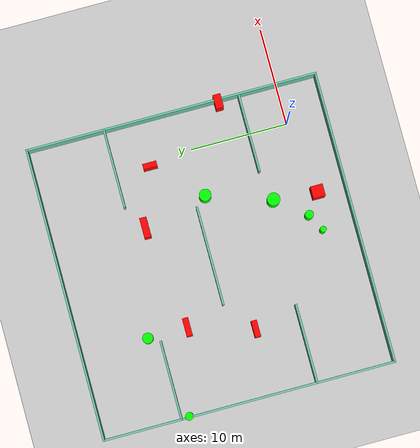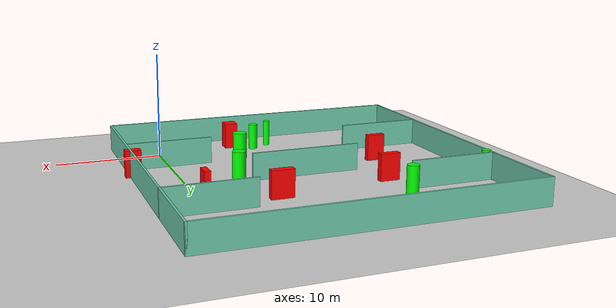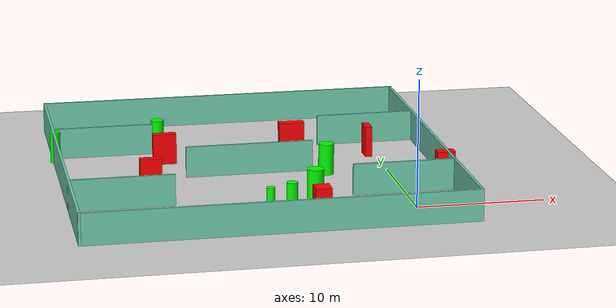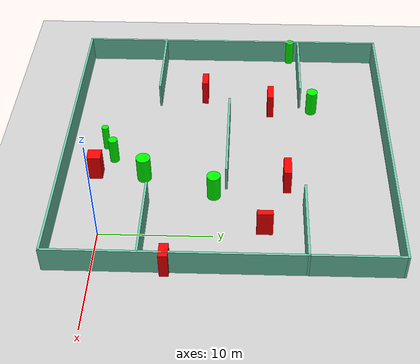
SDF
<sdf version="1.7">
 <world name="default">
  <light name="sun" type="directional">
   <pose>0 0 10 0 -0 0</pose>
   <diffuse>0.8 0.8 0.8 1</diffuse>
   <specular>0.2 0.2 0.2 1</specular>
   <attenuation>
    <range>1000</range>
    <constant>0.9</constant>
    <linear>0.01</linear>
    <quadratic>0.001</quadratic>
   </attenuation>
   <direction>-0.5 0.1 -0.9</direction>
   <spot><inner_angle>0</inner_angle><outer_angle>0</outer_angle><falloff>0</falloff></spot>
  </light>
  <model name="ground_plane">
   <static>1</static>
   <link name="link">
    <collision name="collision">
     <geometry><plane><normal>0 0 1</normal><size>100 100</size></plane></geometry>
     <surface>
      <contact><collide_bitmask>65535</collide_bitmask></contact>
      <friction><ode><mu>100</mu><mu2>50</mu2></ode></friction>
     </surface>
    </collision>
    <visual name="visual">
     <cast_shadows>0</cast_shadows>
     <geometry><plane><normal>0 0 1</normal><size>100 100</size></plane></geometry>
     <material>
      <script><uri>file://media/materials/scripts/gazebo.material</uri><name>Gazebo/Grey</name></script>
     </material>
    </visual>
   </link>
  </model>
  <gravity>0 0 -9.8</gravity>
  <magnetic_field>6e-06 2.3e-05 -4.2e-05</magnetic_field>
  <atmosphere type="adiabatic"/>
  <physics type="ode">
   <max_step_size>0.001</max_step_size>
   <real_time_factor>1</real_time_factor>
   <real_time_update_rate>1000</real_time_update_rate>
  </physics>
  <scene><ambient>0.4 0.4 0.4 1</ambient><background>0.7 0.7 0.7 1</background><shadows>1</shadows></scene>
  <spherical_coordinates>
   <surface_model>EARTH_WGS84</surface_model>
   <latitude_deg>0</latitude_deg>
   <longitude_deg>0</longitude_deg>
   <elevation>0</elevation>
   <heading_deg>0</heading_deg>
  </spherical_coordinates>
  <model name="my_base_walls">
   <link name="Wall_10">
    <collision name="Wall_10_Collision">
     <geometry><box><size>8.2 0.2 2.5</size></box></geometry>
     <pose>0 0 1.25 0 -0 0</pose>
    </collision>
    <visual name="Wall_10_Visual">
     <pose>0 0 1.25 0 -0 0</pose>
     <geometry><box><size>8.2 0.2 2.5</size></box></geometry>
     <material>
      <script><uri>file://media/materials/scripts/gazebo.material</uri><name>Gazebo/Grey</name></script>
      <ambient>0.435294 0.796078 0.67451 1</ambient>
     </material>
     <meta><layer>0</layer></meta>
    </visual>
    <pose>-11 -7 0 0 -0 0</pose>
   </link>
   <link name="Wall_12">
    <collision name="Wall_12_Collision">
     <geometry><box><size>8.2 0.2 2.5</size></box></geometry>
     <pose>0 0 1.25 0 -0 0</pose>
    </collision>
    <visual name="Wall_12_Visual">
     <pose>0 0 1.25 0 -0 0</pose>
     <geometry><box><size>8.2 0.2 2.5</size></box></geometry>
     <material>
      <script><uri>file://media/materials/scripts/gazebo.material</uri><name>Gazebo/Grey</name></script>
      <ambient>0.435294 0.796078 0.67451 1</ambient>
     </material>
     <meta><layer>0</layer></meta>
    </visual>
    <pose>-11 7 0 0 -0 0</pose>
   </link>
   <link name="Wall_14">
    <collision name="Wall_14_Collision">
     <geometry><box><size>8.2 0.2 2.5</size></box></geometry>
     <pose>0 0 1.25 0 -0 0</pose>
    </collision>
    <visual name="Wall_14_Visual">
     <pose>0 0 1.25 0 -0 0</pose>
     <geometry><box><size>8.2 0.2 2.5</size></box></geometry>
     <material>
      <script><uri>file://media/materials/scripts/gazebo.material</uri><name>Gazebo/Grey</name></script>
      <ambient>0.435294 0.796078 0.67451 1</ambient>
     </material>
     <meta><layer>0</layer></meta>
    </visual>
    <pose>11 7 0 0 -0 3.14159</pose>
   </link>
   <link name="Wall_16">
    <collision name="Wall_16_Collision">
     <geometry><box><size>10.2 0.2 2.5</size></box></geometry>
     <pose>0 0 1.25 0 -0 0</pose>
    </collision>
    <visual name="Wall_16_Visual">
     <pose>0 0 1.25 0 -0 0</pose>
     <geometry><box><size>10.2 0.2 2.5</size></box></geometry>
     <material>
      <script><uri>file://media/materials/scripts/gazebo.material</uri><name>Gazebo/Grey</name></script>
      <ambient>0.435294 0.796078 0.67451 1</ambient>
     </material>
     <meta><layer>0</layer></meta>
    </visual>
    <pose>0 0 0 0 -0 3.14159</pose>
   </link>
   <link name="Wall_2">
    <collision name="Wall_2_Collision">
     <geometry><box><size>30.2 0.2 2.5</size></box></geometry>
     <pose>0 0 1.25 0 -0 0</pose>
    </collision>
    <visual name="Wall_2_Visual">
     <pose>0 0 1.25 0 -0 0</pose>
     <geometry><box><size>30.2 0.2 2.5</size></box></geometry>
     <material>
      <script><uri>file://media/materials/scripts/gazebo.material</uri><name>Gazebo/Grey</name></script>
      <ambient>0.435294 0.796078 0.67451 1</ambient>
     </material>
     <meta><layer>0</layer></meta>
    </visual>
    <pose>0 -15 0 0 -0 3.14159</pose>
   </link>
   <link name="Wall_3">
    <collision name="Wall_3_Collision">
     <geometry><box><size>30.2 0.2 2.5</size></box></geometry>
     <pose>0 0 1.25 0 -0 0</pose>
    </collision>
    <visual name="Wall_3_Visual">
     <pose>0 0 1.25 0 -0 0</pose>
     <geometry><box><size>30.2 0.2 2.5</size></box></geometry>
     <material>
      <script><uri>file://media/materials/scripts/gazebo.material</uri><name>Gazebo/Grey</name></script>
      <ambient>0.435294 0.796078 0.67451 1</ambient>
     </material>
     <meta><layer>0</layer></meta>
    </visual>
    <pose>-15 0 0 0 -0 1.5708</pose>
   </link>
   <link name="Wall_4">
    <collision name="Wall_4_Collision">
     <geometry><box><size>30.2 0.2 2.5</size></box></geometry>
     <pose>0 0 1.25 0 -0 0</pose>
    </collision>
    <visual name="Wall_4_Visual">
     <pose>0 0 1.25 0 -0 0</pose>
     <geometry><box><size>30.2 0.2 2.5</size></box></geometry>
     <material>
      <script><uri>file://media/materials/scripts/gazebo.material</uri><name>Gazebo/Grey</name></script>
      <ambient>0.435294 0.796078 0.67451 1</ambient>
     </material>
     <meta><layer>0</layer></meta>
    </visual>
    <pose>0 15 0 0 -0 0</pose>
   </link>
   <link name="Wall_6">
    <collision name="Wall_6_Collision">
     <geometry><box><size>30.2 0.2 2.5</size></box></geometry>
     <pose>0 0 1.25 0 -0 0</pose>
    </collision>
    <visual name="Wall_6_Visual">
     <pose>0 0 1.25 0 -0 0</pose>
     <geometry><box><size>30.2 0.2 2.5</size></box></geometry>
     <material>
      <script><uri>file://media/materials/scripts/gazebo.material</uri><name>Gazebo/Grey</name></script>
      <ambient>0.435294 0.796078 0.67451 1</ambient>
     </material>
     <meta><layer>0</layer></meta>
    </visual>
    <pose>15 0 0 0 -0 1.5708</pose>
   </link>
   <link name="Wall_8">
    <collision name="Wall_8_Collision">
     <geometry><box><size>8.2 0.2 2.5</size></box></geometry>
     <pose>0 0 1.25 0 -0 0</pose>
    </collision>
    <visual name="Wall_8_Visual">
     <pose>0 0 1.25 0 -0 0</pose>
     <geometry><box><size>8.2 0.2 2.5</size></box></geometry>
     <material>
      <script><uri>file://media/materials/scripts/gazebo.material</uri><name>Gazebo/Grey</name></script>
      <ambient>0.435294 0.796078 0.67451 1</ambient>
     </material>
     <meta><layer>0</layer></meta>
    </visual>
    <pose>11 -7 0 0 -0 3.14159</pose>
   </link>
   <static>1</static>
   <pose>-11 11 0 0 -0 0</pose>
  </model>
  <model name="cylinder1">
   <static>1</static>
   <link name="link">
    <inertial>
     <mass>1</mass>
     <inertia><ixx>0.5</ixx><ixy>0</ixy><ixz>0</ixz><iyy>0.5</iyy><iyz>0</iyz><izz>1</izz></inertia>
    </inertial>
    <collision name="collision">
     <geometry><cylinder><radius>0.4326419051595179</radius><length>2.5</length></cylinder></geometry>
    </collision>
    <visual name="visual">
     <geometry><cylinder><radius>0.4326419051595179</radius><length>2.5</length></cylinder></geometry>
     <material>
      <ambient>0 1 0 1</ambient>
      <diffuse>0 1 0 1</diffuse>
      <specular>0.1 0.1 0.1 1</specular>
      <emissive>0 0 0 0</emissive>
     </material>
    </visual>
   </link>
   <pose>-9.586111366317446 0.321938383969127 1.25 0 0 0</pose>
  </model>
  <model name="cylinder2">
   <static>1</static>
   <link name="link">
    <inertial>
     <mass>1</mass>
     <inertia><ixx>0.5</ixx><ixy>0</ixy><ixz>0</ixz><iyy>0.5</iyy><iyz>0</iyz><izz>1</izz></inertia>
    </inertial>
    <collision name="collision">
     <geometry><cylinder><radius>0.6170900684534311</radius><length>2.5</length></cylinder></geometry>
    </collision>
    <visual name="visual">
     <geometry><cylinder><radius>0.6170900684534311</radius><length>2.5</length></cylinder></geometry>
     <material>
      <ambient>0 1 0 1</ambient>
      <diffuse>0 1 0 1</diffuse>
      <specular>0.1 0.1 0.1 1</specular>
      <emissive>0 0 0 0</emissive>
     </material>
    </visual>
   </link>
   <pose>-4.998683367059559 9.892181709433016 1.25 0 0 0</pose>
  </model>
  <model name="cylinder3">
   <static>1</static>
   <link name="link">
    <inertial>
     <mass>1</mass>
     <inertia><ixx>0.5</ixx><ixy>0</ixy><ixz>0</ixz><iyy>0.5</iyy><iyz>0</iyz><izz>1</izz></inertia>
    </inertial>
    <collision name="collision">
     <geometry><cylinder><radius>0.540928994343187</radius><length>2.5</length></cylinder></geometry>
    </collision>
    <visual name="visual">
     <geometry><cylinder><radius>0.540928994343187</radius><length>2.5</length></cylinder></geometry>
     <material>
      <ambient>0 1 0 1</ambient>
      <diffuse>0 1 0 1</diffuse>
      <specular>0.1 0.1 0.1 1</specular>
      <emissive>0 0 0 0</emissive>
     </material>
    </visual>
   </link>
   <pose>-17.322418540701303 19.145594058680075 1.25 0 0 0</pose>
  </model>
  <model name="cylinder4">
   <static>1</static>
   <link name="link">
    <inertial>
     <mass>1</mass>
     <inertia><ixx>0.5</ixx><ixy>0</ixy><ixz>0</ixz><iyy>0.5</iyy><iyz>0</iyz><izz>1</izz></inertia>
    </inertial>
    <collision name="collision">
     <geometry><cylinder><radius>0.6578031433569813</radius><length>2.5</length></cylinder></geometry>
    </collision>
    <visual name="visual">
     <geometry><cylinder><radius>0.6578031433569813</radius><length>2.5</length></cylinder></geometry>
     <material>
      <ambient>0 1 0 1</ambient>
      <diffuse>0 1 0 1</diffuse>
      <specular>0.1 0.1 0.1 1</specular>
      <emissive>0 0 0 0</emissive>
     </material>
    </visual>
   </link>
   <pose>-7.182280438714649 3.3827668892351284 1.25 0 0 0</pose>
  </model>
  <model name="cylinder5">
   <static>1</static>
   <link name="link">
    <inertial>
     <mass>1</mass>
     <inertia><ixx>0.5</ixx><ixy>0</ixy><ixz>0</ixz><iyy>0.5</iyy><iyz>0</iyz><izz>1</izz></inertia>
    </inertial>
    <collision name="collision">
     <geometry><cylinder><radius>0.4104662732104174</radius><length>2.5</length></cylinder></geometry>
    </collision>
    <visual name="visual">
     <geometry><cylinder><radius>0.4104662732104174</radius><length>2.5</length></cylinder></geometry>
     <material>
      <ambient>0 1 0 1</ambient>
      <diffuse>0 1 0 1</diffuse>
      <specular>0.1 0.1 0.1 1</specular>
      <emissive>0 0 0 0</emissive>
     </material>
    </visual>
   </link>
   <pose>-25.898457800474894 17.158005122505067 1.25 0 0 0</pose>
  </model>
  <model name="cylinder6">
   <static>1</static>
   <link name="link">
    <inertial>
     <mass>1</mass>
     <inertia><ixx>0.5</ixx><ixy>0</ixy><ixz>0</ixz><iyy>0.5</iyy><iyz>0</iyz><izz>1</izz></inertia>
    </inertial>
    <collision name="collision">
     <geometry><cylinder><radius>0.31898995639621114</radius><length>2.5</length></cylinder></geometry>
    </collision>
    <visual name="visual">
     <geometry><cylinder><radius>0.31898995639621114</radius><length>2.5</length></cylinder></geometry>
     <material>
      <ambient>0 1 0 1</ambient>
      <diffuse>0 1 0 1</diffuse>
      <specular>0.1 0.1 0.1 1</specular>
      <emissive>0 0 0 0</emissive>
     </material>
    </visual>
   </link>
   <pose>-11.376394689968647 -0.6318930232624433 1.25 0 0 0</pose>
  </model>
  <model name="box1">
   <static>1</static>
   <link name="link">
    <inertial>
     <mass>1</mass>
     <inertia><ixx>0.083</ixx><ixy>0</ixy><ixz>0</ixz><iyy>0.083</iyy><iyz>0</iyz><izz>0.083</izz></inertia>
    </inertial>
    <collision name="collision">
     <geometry><box><size>1.2341963994927743 1.2622885320566883 2.5</size></box></geometry>
    </collision>
    <visual name="visual">
     <geometry><box><size>1.2341963994927743 1.2622885320566883 2.5</size></box></geometry>
     <material>
      <ambient>1 0 0 1</ambient>
      <diffuse>1 0 0 1</diffuse>
      <specular>0.1 0.1 0.1 1</specular>
      <emissive>0 0 0 0</emissive>
     </material>
    </visual>
    <sensor name="my_contact" type="contact">
     <contact><collision>box_collision</collision><topic>__default_topic__</topic></contact>
    </sensor>
   </link>
   <pose>-7.558980219554172 -1.1137800280104222 1.25 0 0 0</pose>
  </model>
  <model name="box2">
   <static>1</static>
   <link name="link">
    <inertial>
     <mass>1</mass>
     <inertia><ixx>0.083</ixx><ixy>0</ixy><ixz>0</ixz><iyy>0.083</iyy><iyz>0</iyz><izz>0.083</izz></inertia>
    </inertial>
    <collision name="collision">
     <geometry><box><size>1.4442593825315528 0.7923086057065709 2.5</size></box></geometry>
    </collision>
    <visual name="visual">
     <geometry><box><size>1.4442593825315528 0.7923086057065709 2.5</size></box></geometry>
     <material>
      <ambient>1 0 0 1</ambient>
      <diffuse>1 0 0 1</diffuse>
      <specular>0.1 0.1 0.1 1</specular>
      <emissive>0 0 0 0</emissive>
     </material>
    </visual>
    <sensor name="my_contact" type="contact">
     <contact><collision>box_collision</collision><topic>__default_topic__</topic></contact>
    </sensor>
   </link>
   <pose>3.792994491246315 6.158442305634342 1.25 0 0 0</pose>
  </model>
  <model name="box3">
   <static>1</static>
   <link name="link">
    <inertial>
     <mass>1</mass>
     <inertia><ixx>0.083</ixx><ixy>0</ixy><ixz>0</ixz><iyy>0.083</iyy><iyz>0</iyz><izz>0.083</izz></inertia>
    </inertial>
    <collision name="collision">
     <geometry><box><size>1.7179872272346843 0.5930643325518709 2.5</size></box></geometry>
    </collision>
    <visual name="visual">
     <geometry><box><size>1.7179872272346843 0.5930643325518709 2.5</size></box></geometry>
     <material>
      <ambient>1 0 0 1</ambient>
      <diffuse>1 0 0 1</diffuse>
      <specular>0.1 0.1 0.1 1</specular>
      <emissive>0 0 0 0</emissive>
     </material>
    </visual>
    <sensor name="my_contact" type="contact">
     <contact><collision>box_collision</collision><topic>__default_topic__</topic></contact>
    </sensor>
   </link>
   <pose>-19.229448204016357 8.485732472102367 1.25 0 0 0</pose>
  </model>
  <model name="box4">
   <static>1</static>
   <link name="link">
    <inertial>
     <mass>1</mass>
     <inertia><ixx>0.083</ixx><ixy>0</ixy><ixz>0</ixz><iyy>0.083</iyy><iyz>0</iyz><izz>0.083</izz></inertia>
    </inertial>
    <collision name="collision">
     <geometry><box><size>1.8790559113080412 0.6099951308695881 2.5</size></box></geometry>
    </collision>
    <visual name="visual">
     <geometry><box><size>1.8790559113080412 0.6099951308695881 2.5</size></box></geometry>
     <material>
      <ambient>1 0 0 1</ambient>
      <diffuse>1 0 0 1</diffuse>
      <specular>0.1 0.1 0.1 1</specular>
      <emissive>0 0 0 0</emissive>
     </material>
    </visual>
    <sensor name="my_contact" type="contact">
     <contact><collision>box_collision</collision><topic>__default_topic__</topic></contact>
    </sensor>
   </link>
   <pose>-17.275743723344007 15.044269813755232 1.25 0 0 0</pose>
  </model>
  <model name="box5">
   <static>1</static>
   <link name="link">
    <inertial>
     <mass>1</mass>
     <inertia><ixx>0.083</ixx><ixy>0</ixy><ixz>0</ixz><iyy>0.083</iyy><iyz>0</iyz><izz>0.083</izz></inertia>
    </inertial>
    <collision name="collision">
     <geometry><box><size>2.064652895700392 0.6963654085918646 2.5</size></box></geometry>
    </collision>
    <visual name="visual">
     <geometry><box><size>2.064652895700392 0.6963654085918646 2.5</size></box></geometry>
     <material>
      <ambient>1 0 0 1</ambient>
      <diffuse>1 0 0 1</diffuse>
      <specular>0.1 0.1 0.1 1</specular>
      <emissive>0 0 0 0</emissive>
     </material>
    </visual>
    <sensor name="my_contact" type="contact">
     <contact><collision>box_collision</collision><topic>__default_topic__</topic></contact>
    </sensor>
   </link>
   <pose>-6.576970597226111 16.518462502955195 1.25 0 0 0</pose>
  </model>
  <model name="box6">
   <static>1</static>
   <link name="link">
    <inertial>
     <mass>1</mass>
     <inertia><ixx>0.083</ixx><ixy>0</ixy><ixz>0</ixz><iyy>0.083</iyy><iyz>0</iyz><izz>0.083</izz></inertia>
    </inertial>
    <collision name="collision">
     <geometry><box><size>0.5523179030688941 1.4306118810961854 2.5</size></box></geometry>
    </collision>
    <visual name="visual">
     <geometry><box><size>0.5523179030688941 1.4306118810961854 2.5</size></box></geometry>
     <material>
      <ambient>1 0 0 1</ambient>
      <diffuse>1 0 0 1</diffuse>
      <specular>0.1 0.1 0.1 1</specular>
      <emissive>0 0 0 0</emissive>
     </material>
    </visual>
    <sensor name="my_contact" type="contact">
     <contact><collision>box_collision</collision><topic>__default_topic__</topic></contact>
    </sensor>
   </link>
   <pose>-0.6434758288260625 14.457368514120049 1.25 0 0 0</pose>
  </model>
 </world>
</sdf>
